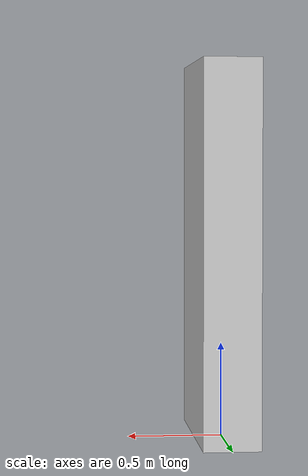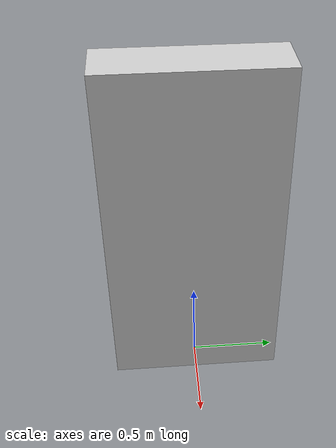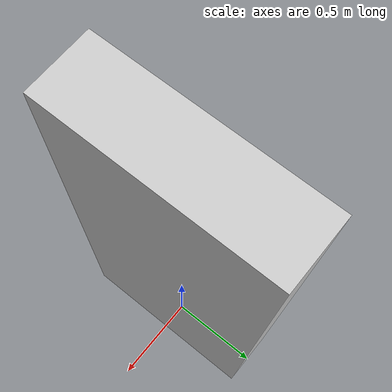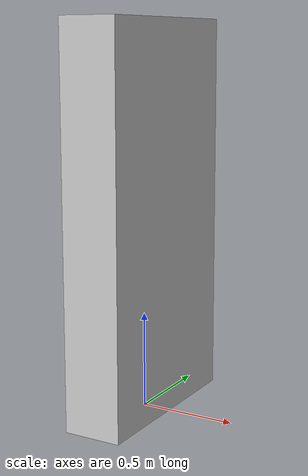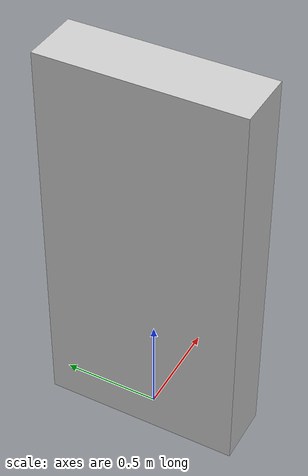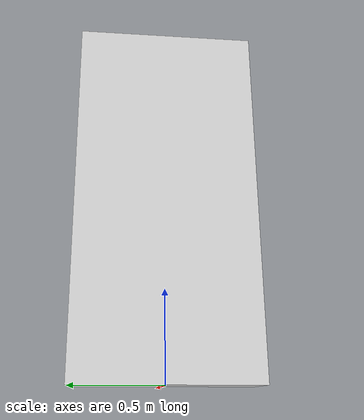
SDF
<?xml version="1.0" ?>
<sdf version="1.9">
  <model name="perimeter_wall">
    <static>true</static>
    <link name="link">
      <pose>0 0 1.0 0 0 0</pose>
      <collision name="collision">
        <geometry>
          <box>
            <size>0.3 1.0 2.0</size>
          </box>
        </geometry>
      </collision>
      <visual name="visual">
        <geometry>
          <box>
            <size>0.3 1.0 2.0</size>
          </box>
        </geometry>
        <material>
          <ambient>0.8 0.8 0.8 1</ambient>
          <diffuse>0.8 0.8 0.8 1</diffuse>
          <specular>0.1 0.1 0.1 1</specular>
        </material>
      </visual>
    </link>
  </model>
</sdf>
